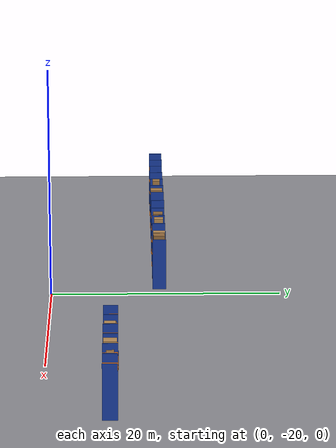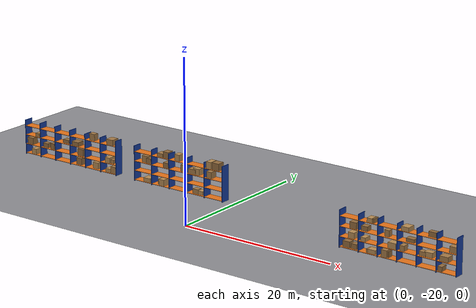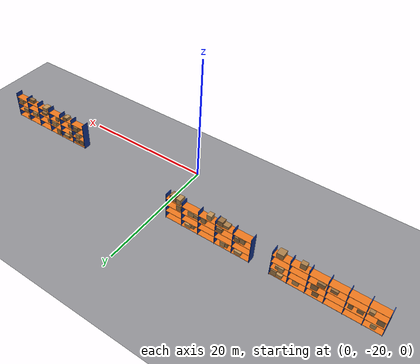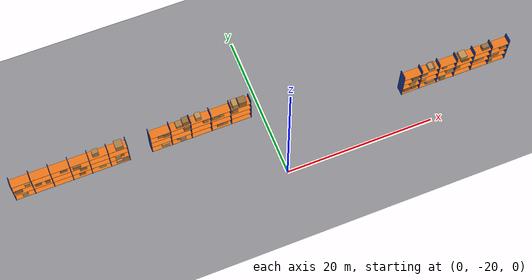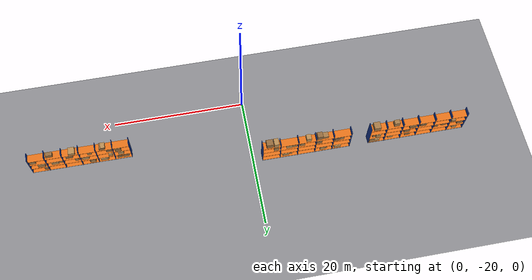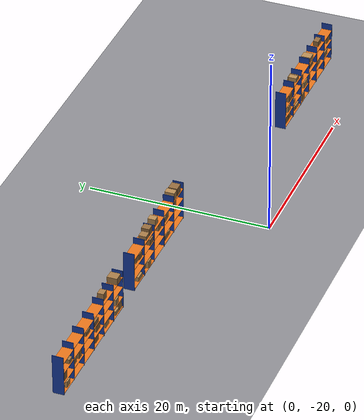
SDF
<sdf version="1.9">
 <world name="warehouse">
  <model name="ground_plane">
   <static>true</static>
   <link name="link">
    <collision name="collision">
     <geometry><plane><normal>0 0 1</normal><size>1 1</size></plane></geometry>
    </collision>
    <visual name="visual">
     <geometry><plane><normal>0 0 1</normal><size>200 100</size></plane></geometry>
     <material>
      <ambient>0.55 0.55 0.57 1</ambient>
      <diffuse>0.55 0.55 0.57 1</diffuse>
      <specular>0.1 0.1 0.1 1</specular>
     </material>
    </visual>
   </link>
  </model>
  <model name="rack3">
   <static>true</static>
   <link name="link">
    <collision name="up0_c">
     <pose>18.000 -14.700 2.250 0 0 0</pose>
     <geometry><box><size>0.080 1.200 4.500</size></box></geometry>
    </collision>
    <visual name="up0_v">
     <pose>18.000 -14.700 2.250 0 0 0</pose>
     <geometry><box><size>0.080 1.200 4.500</size></box></geometry>
     <material>
      <ambient>0.1 0.25 0.65 1</ambient>
      <diffuse>0.1 0.25 0.65 1</diffuse>
      <specular>0.1 0.1 0.1 1</specular>
     </material>
    </visual>
    <collision name="up1_c">
     <pose>20.500 -14.700 2.250 0 0 0</pose>
     <geometry><box><size>0.080 1.200 4.500</size></box></geometry>
    </collision>
    <visual name="up1_v">
     <pose>20.500 -14.700 2.250 0 0 0</pose>
     <geometry><box><size>0.080 1.200 4.500</size></box></geometry>
     <material>
      <ambient>0.1 0.25 0.65 1</ambient>
      <diffuse>0.1 0.25 0.65 1</diffuse>
      <specular>0.1 0.1 0.1 1</specular>
     </material>
    </visual>
    <collision name="up2_c">
     <pose>23.000 -14.700 2.250 0 0 0</pose>
     <geometry><box><size>0.080 1.200 4.500</size></box></geometry>
    </collision>
    <visual name="up2_v">
     <pose>23.000 -14.700 2.250 0 0 0</pose>
     <geometry><box><size>0.080 1.200 4.500</size></box></geometry>
     <material>
      <ambient>0.1 0.25 0.65 1</ambient>
      <diffuse>0.1 0.25 0.65 1</diffuse>
      <specular>0.1 0.1 0.1 1</specular>
     </material>
    </visual>
    <collision name="up3_c">
     <pose>25.500 -14.700 2.250 0 0 0</pose>
     <geometry><box><size>0.080 1.200 4.500</size></box></geometry>
    </collision>
    <visual name="up3_v">
     <pose>25.500 -14.700 2.250 0 0 0</pose>
     <geometry><box><size>0.080 1.200 4.500</size></box></geometry>
     <material>
      <ambient>0.1 0.25 0.65 1</ambient>
      <diffuse>0.1 0.25 0.65 1</diffuse>
      <specular>0.1 0.1 0.1 1</specular>
     </material>
    </visual>
    <collision name="up4_c">
     <pose>28.000 -14.700 2.250 0 0 0</pose>
     <geometry><box><size>0.080 1.200 4.500</size></box></geometry>
    </collision>
    <visual name="up4_v">
     <pose>28.000 -14.700 2.250 0 0 0</pose>
     <geometry><box><size>0.080 1.200 4.500</size></box></geometry>
     <material>
      <ambient>0.1 0.25 0.65 1</ambient>
      <diffuse>0.1 0.25 0.65 1</diffuse>
      <specular>0.1 0.1 0.1 1</specular>
     </material>
    </visual>
    <collision name="up5_c">
     <pose>30.500 -14.700 2.250 0 0 0</pose>
     <geometry><box><size>0.080 1.200 4.500</size></box></geometry>
    </collision>
    <visual name="up5_v">
     <pose>30.500 -14.700 2.250 0 0 0</pose>
     <geometry><box><size>0.080 1.200 4.500</size></box></geometry>
     <material>
      <ambient>0.1 0.25 0.65 1</ambient>
      <diffuse>0.1 0.25 0.65 1</diffuse>
      <specular>0.1 0.1 0.1 1</specular>
     </material>
    </visual>
    <collision name="up6_c">
     <pose>33.000 -14.700 2.250 0 0 0</pose>
     <geometry><box><size>0.080 1.200 4.500</size></box></geometry>
    </collision>
    <visual name="up6_v">
     <pose>33.000 -14.700 2.250 0 0 0</pose>
     <geometry><box><size>0.080 1.200 4.500</size></box></geometry>
     <material>
      <ambient>0.1 0.25 0.65 1</ambient>
      <diffuse>0.1 0.25 0.65 1</diffuse>
      <specular>0.1 0.1 0.1 1</specular>
     </material>
    </visual>
    <collision name="sh0_c">
     <pose>25.500 -14.700 0.150 0 0 0</pose>
     <geometry><box><size>15.000 1.200 0.050</size></box></geometry>
    </collision>
    <visual name="sh0_v">
     <pose>25.500 -14.700 0.150 0 0 0</pose>
     <geometry><box><size>15.000 1.200 0.050</size></box></geometry>
     <material>
      <ambient>0.9 0.45 0.1 1</ambient>
      <diffuse>0.9 0.45 0.1 1</diffuse>
      <specular>0.1 0.1 0.1 1</specular>
     </material>
    </visual>
    <collision name="sh1_c">
     <pose>25.500 -14.700 1.350 0 0 0</pose>
     <geometry><box><size>15.000 1.200 0.050</size></box></geometry>
    </collision>
    <visual name="sh1_v">
     <pose>25.500 -14.700 1.350 0 0 0</pose>
     <geometry><box><size>15.000 1.200 0.050</size></box></geometry>
     <material>
      <ambient>0.9 0.45 0.1 1</ambient>
      <diffuse>0.9 0.45 0.1 1</diffuse>
      <specular>0.1 0.1 0.1 1</specular>
     </material>
    </visual>
    <collision name="sh2_c">
     <pose>25.500 -14.700 2.550 0 0 0</pose>
     <geometry><box><size>15.000 1.200 0.050</size></box></geometry>
    </collision>
    <visual name="sh2_v">
     <pose>25.500 -14.700 2.550 0 0 0</pose>
     <geometry><box><size>15.000 1.200 0.050</size></box></geometry>
     <material>
      <ambient>0.9 0.45 0.1 1</ambient>
      <diffuse>0.9 0.45 0.1 1</diffuse>
      <specular>0.1 0.1 0.1 1</specular>
     </material>
    </visual>
    <collision name="sh3_c">
     <pose>25.500 -14.700 3.750 0 0 0</pose>
     <geometry><box><size>15.000 1.200 0.050</size></box></geometry>
    </collision>
    <visual name="sh3_v">
     <pose>25.500 -14.700 3.750 0 0 0</pose>
     <geometry><box><size>15.000 1.200 0.050</size></box></geometry>
     <material>
      <ambient>0.9 0.45 0.1 1</ambient>
      <diffuse>0.9 0.45 0.1 1</diffuse>
      <specular>0.1 0.1 0.1 1</specular>
     </material>
    </visual>
    <collision name="c0_c">
     <pose>18.833 -14.697 0.542 0 0 0</pose>
     <geometry><box><size>0.922 0.825 0.734</size></box></geometry>
    </collision>
    <visual name="c0_v">
     <pose>18.833 -14.697 0.542 0 0 0</pose>
     <geometry><box><size>0.922 0.825 0.734</size></box></geometry>
     <material>
      <ambient>0.58 0.42 0.24 1</ambient>
      <diffuse>0.58 0.42 0.24 1</diffuse>
      <specular>0.1 0.1 0.1 1</specular>
     </material>
    </visual>
    <collision name="c1_c">
     <pose>19.816 -14.692 0.476 0 0 0</pose>
     <geometry><box><size>0.733 0.813 0.603</size></box></geometry>
    </collision>
    <visual name="c1_v">
     <pose>19.816 -14.692 0.476 0 0 0</pose>
     <geometry><box><size>0.733 0.813 0.603</size></box></geometry>
     <material>
      <ambient>0.58 0.42 0.24 1</ambient>
      <diffuse>0.58 0.42 0.24 1</diffuse>
      <specular>0.1 0.1 0.1 1</specular>
     </material>
    </visual>
    <collision name="c2_c">
     <pose>19.474 -14.687 1.735 0 0 0</pose>
     <geometry><box><size>0.796 0.973 0.720</size></box></geometry>
    </collision>
    <visual name="c2_v">
     <pose>19.474 -14.687 1.735 0 0 0</pose>
     <geometry><box><size>0.796 0.973 0.720</size></box></geometry>
     <material>
      <ambient>0.72 0.55 0.33 1</ambient>
      <diffuse>0.72 0.55 0.33 1</diffuse>
      <specular>0.1 0.1 0.1 1</specular>
     </material>
    </visual>
    <collision name="c3_c">
     <pose>19.742 -14.673 2.971 0 0 0</pose>
     <geometry><box><size>0.880 1.069 0.791</size></box></geometry>
    </collision>
    <visual name="c3_v">
     <pose>19.742 -14.673 2.971 0 0 0</pose>
     <geometry><box><size>0.880 1.069 0.791</size></box></geometry>
     <material>
      <ambient>0.58 0.42 0.24 1</ambient>
      <diffuse>0.58 0.42 0.24 1</diffuse>
      <specular>0.1 0.1 0.1 1</specular>
     </material>
    </visual>
    <collision name="c4_c">
     <pose>22.175 -14.702 0.413 0 0 0</pose>
     <geometry><box><size>1.024 0.872 0.476</size></box></geometry>
    </collision>
    <visual name="c4_v">
     <pose>22.175 -14.702 0.413 0 0 0</pose>
     <geometry><box><size>1.024 0.872 0.476</size></box></geometry>
     <material>
      <ambient>0.72 0.55 0.33 1</ambient>
      <diffuse>0.72 0.55 0.33 1</diffuse>
      <specular>0.1 0.1 0.1 1</specular>
     </material>
    </visual>
    <collision name="c5_c">
     <pose>21.885 -14.743 0.400 0 0 0</pose>
     <geometry><box><size>0.806 0.735 0.449</size></box></geometry>
    </collision>
    <visual name="c5_v">
     <pose>21.885 -14.743 0.400 0 0 0</pose>
     <geometry><box><size>0.806 0.735 0.449</size></box></geometry>
     <material>
      <ambient>0.65 0.48 0.28 1</ambient>
      <diffuse>0.65 0.48 0.28 1</diffuse>
      <specular>0.1 0.1 0.1 1</specular>
     </material>
    </visual>
    <collision name="c6_c">
     <pose>21.058 -14.686 1.615 0 0 0</pose>
     <geometry><box><size>0.598 0.955 0.481</size></box></geometry>
    </collision>
    <visual name="c6_v">
     <pose>21.058 -14.686 1.615 0 0 0</pose>
     <geometry><box><size>0.598 0.955 0.481</size></box></geometry>
     <material>
      <ambient>0.72 0.55 0.33 1</ambient>
      <diffuse>0.72 0.55 0.33 1</diffuse>
      <specular>0.1 0.1 0.1 1</specular>
     </material>
    </visual>
    <collision name="c7_c">
     <pose>21.110 -14.680 2.858 0 0 0</pose>
     <geometry><box><size>0.817 0.719 0.567</size></box></geometry>
    </collision>
    <visual name="c7_v">
     <pose>21.110 -14.680 2.858 0 0 0</pose>
     <geometry><box><size>0.817 0.719 0.567</size></box></geometry>
     <material>
      <ambient>0.58 0.42 0.24 1</ambient>
      <diffuse>0.58 0.42 0.24 1</diffuse>
      <specular>0.1 0.1 0.1 1</specular>
     </material>
    </visual>
    <collision name="c8_c">
     <pose>21.979 -14.679 4.017 0 0 0</pose>
     <geometry><box><size>0.807 0.968 0.484</size></box></geometry>
    </collision>
    <visual name="c8_v">
     <pose>21.979 -14.679 4.017 0 0 0</pose>
     <geometry><box><size>0.807 0.968 0.484</size></box></geometry>
     <material>
      <ambient>0.58 0.42 0.24 1</ambient>
      <diffuse>0.58 0.42 0.24 1</diffuse>
      <specular>0.1 0.1 0.1 1</specular>
     </material>
    </visual>
    <collision name="c9_c">
     <pose>21.850 -14.733 4.033 0 0 0</pose>
     <geometry><box><size>0.662 0.905 0.516</size></box></geometry>
    </collision>
    <visual name="c9_v">
     <pose>21.850 -14.733 4.033 0 0 0</pose>
     <geometry><box><size>0.662 0.905 0.516</size></box></geometry>
     <material>
      <ambient>0.72 0.55 0.33 1</ambient>
      <diffuse>0.72 0.55 0.33 1</diffuse>
      <specular>0.1 0.1 0.1 1</specular>
     </material>
    </visual>
    <collision name="c10_c">
     <pose>23.899 -14.684 0.527 0 0 0</pose>
     <geometry><box><size>0.930 0.729 0.705</size></box></geometry>
    </collision>
    <visual name="c10_v">
     <pose>23.899 -14.684 0.527 0 0 0</pose>
     <geometry><box><size>0.930 0.729 0.705</size></box></geometry>
     <material>
      <ambient>0.58 0.42 0.24 1</ambient>
      <diffuse>0.58 0.42 0.24 1</diffuse>
      <specular>0.1 0.1 0.1 1</specular>
     </material>
    </visual>
    <collision name="c11_c">
     <pose>23.858 -14.723 0.608 0 0 0</pose>
     <geometry><box><size>0.742 1.064 0.867</size></box></geometry>
    </collision>
    <visual name="c11_v">
     <pose>23.858 -14.723 0.608 0 0 0</pose>
     <geometry><box><size>0.742 1.064 0.867</size></box></geometry>
     <material>
      <ambient>0.65 0.48 0.28 1</ambient>
      <diffuse>0.65 0.48 0.28 1</diffuse>
      <specular>0.1 0.1 0.1 1</specular>
     </material>
    </visual>
    <collision name="c12_c">
     <pose>24.803 -14.735 1.720 0 0 0</pose>
     <geometry><box><size>1.023 0.890 0.691</size></box></geometry>
    </collision>
    <visual name="c12_v">
     <pose>24.803 -14.735 1.720 0 0 0</pose>
     <geometry><box><size>1.023 0.890 0.691</size></box></geometry>
     <material>
      <ambient>0.72 0.55 0.33 1</ambient>
      <diffuse>0.72 0.55 0.33 1</diffuse>
      <specular>0.1 0.1 0.1 1</specular>
     </material>
    </visual>
    <collision name="c13_c">
     <pose>24.012 -14.675 2.954 0 0 0</pose>
     <geometry><box><size>0.583 0.669 0.758</size></box></geometry>
    </collision>
    <visual name="c13_v">
     <pose>24.012 -14.675 2.954 0 0 0</pose>
     <geometry><box><size>0.583 0.669 0.758</size></box></geometry>
     <material>
      <ambient>0.65 0.48 0.28 1</ambient>
      <diffuse>0.65 0.48 0.28 1</diffuse>
      <specular>0.1 0.1 0.1 1</specular>
     </material>
    </visual>
    <collision name="c14_c">
     <pose>26.055 -14.731 1.698 0 0 0</pose>
     <geometry><box><size>0.564 0.799 0.646</size></box></geometry>
    </collision>
    <visual name="c14_v">
     <pose>26.055 -14.731 1.698 0 0 0</pose>
     <geometry><box><size>0.564 0.799 0.646</size></box></geometry>
     <material>
      <ambient>0.65 0.48 0.28 1</ambient>
      <diffuse>0.65 0.48 0.28 1</diffuse>
      <specular>0.1 0.1 0.1 1</specular>
     </material>
    </visual>
    <collision name="c15_c">
     <pose>27.008 -14.669 2.784 0 0 0</pose>
     <geometry><box><size>1.033 0.708 0.417</size></box></geometry>
    </collision>
    <visual name="c15_v">
     <pose>27.008 -14.669 2.784 0 0 0</pose>
     <geometry><box><size>1.033 0.708 0.417</size></box></geometry>
     <material>
      <ambient>0.58 0.42 0.24 1</ambient>
      <diffuse>0.58 0.42 0.24 1</diffuse>
      <specular>0.1 0.1 0.1 1</specular>
     </material>
    </visual>
    <collision name="c16_c">
     <pose>26.577 -14.700 3.999 0 0 0</pose>
     <geometry><box><size>0.571 0.946 0.448</size></box></geometry>
    </collision>
    <visual name="c16_v">
     <pose>26.577 -14.700 3.999 0 0 0</pose>
     <geometry><box><size>0.571 0.946 0.448</size></box></geometry>
     <material>
      <ambient>0.72 0.55 0.33 1</ambient>
      <diffuse>0.72 0.55 0.33 1</diffuse>
      <specular>0.1 0.1 0.1 1</specular>
     </material>
    </visual>
    <collision name="c17_c">
     <pose>26.458 -14.695 4.034 0 0 0</pose>
     <geometry><box><size>0.950 1.087 0.518</size></box></geometry>
    </collision>
    <visual name="c17_v">
     <pose>26.458 -14.695 4.034 0 0 0</pose>
     <geometry><box><size>0.950 1.087 0.518</size></box></geometry>
     <material>
      <ambient>0.72 0.55 0.33 1</ambient>
      <diffuse>0.72 0.55 0.33 1</diffuse>
      <specular>0.1 0.1 0.1 1</specular>
     </material>
    </visual>
    <collision name="c18_c">
     <pose>28.617 -14.748 1.628 0 0 0</pose>
     <geometry><box><size>0.798 0.655 0.507</size></box></geometry>
    </collision>
    <visual name="c18_v">
     <pose>28.617 -14.748 1.628 0 0 0</pose>
     <geometry><box><size>0.798 0.655 0.507</size></box></geometry>
     <material>
      <ambient>0.65 0.48 0.28 1</ambient>
      <diffuse>0.65 0.48 0.28 1</diffuse>
      <specular>0.1 0.1 0.1 1</specular>
     </material>
    </visual>
    <collision name="c19_c">
     <pose>29.353 -14.658 1.671 0 0 0</pose>
     <geometry><box><size>1.015 0.760 0.592</size></box></geometry>
    </collision>
    <visual name="c19_v">
     <pose>29.353 -14.658 1.671 0 0 0</pose>
     <geometry><box><size>1.015 0.760 0.592</size></box></geometry>
     <material>
      <ambient>0.72 0.55 0.33 1</ambient>
      <diffuse>0.72 0.55 0.33 1</diffuse>
      <specular>0.1 0.1 0.1 1</specular>
     </material>
    </visual>
    <collision name="c20_c">
     <pose>29.748 -14.696 4.072 0 0 0</pose>
     <geometry><box><size>0.976 0.615 0.594</size></box></geometry>
    </collision>
    <visual name="c20_v">
     <pose>29.748 -14.696 4.072 0 0 0</pose>
     <geometry><box><size>0.976 0.615 0.594</size></box></geometry>
     <material>
      <ambient>0.58 0.42 0.24 1</ambient>
      <diffuse>0.58 0.42 0.24 1</diffuse>
      <specular>0.1 0.1 0.1 1</specular>
     </material>
    </visual>
    <collision name="c21_c">
     <pose>30.899 -14.696 0.451 0 0 0</pose>
     <geometry><box><size>0.548 0.926 0.552</size></box></geometry>
    </collision>
    <visual name="c21_v">
     <pose>30.899 -14.696 0.451 0 0 0</pose>
     <geometry><box><size>0.548 0.926 0.552</size></box></geometry>
     <material>
      <ambient>0.58 0.42 0.24 1</ambient>
      <diffuse>0.58 0.42 0.24 1</diffuse>
      <specular>0.1 0.1 0.1 1</specular>
     </material>
    </visual>
    <collision name="c22_c">
     <pose>31.366 -14.700 1.683 0 0 0</pose>
     <geometry><box><size>1.060 0.990 0.616</size></box></geometry>
    </collision>
    <visual name="c22_v">
     <pose>31.366 -14.700 1.683 0 0 0</pose>
     <geometry><box><size>1.060 0.990 0.616</size></box></geometry>
     <material>
      <ambient>0.65 0.48 0.28 1</ambient>
      <diffuse>0.65 0.48 0.28 1</diffuse>
      <specular>0.1 0.1 0.1 1</specular>
     </material>
    </visual>
    <collision name="c23_c">
     <pose>32.408 -14.686 2.933 0 0 0</pose>
     <geometry><box><size>0.898 0.795 0.716</size></box></geometry>
    </collision>
    <visual name="c23_v">
     <pose>32.408 -14.686 2.933 0 0 0</pose>
     <geometry><box><size>0.898 0.795 0.716</size></box></geometry>
     <material>
      <ambient>0.65 0.48 0.28 1</ambient>
      <diffuse>0.65 0.48 0.28 1</diffuse>
      <specular>0.1 0.1 0.1 1</specular>
     </material>
    </visual>
   </link>
  </model>
  <model name="rack4">
   <static>true</static>
   <link name="link">
    <collision name="up0_c">
     <pose>-33.000 -10.500 2.250 0 0 0</pose>
     <geometry><box><size>0.080 1.200 4.500</size></box></geometry>
    </collision>
    <visual name="up0_v">
     <pose>-33.000 -10.500 2.250 0 0 0</pose>
     <geometry><box><size>0.080 1.200 4.500</size></box></geometry>
     <material>
      <ambient>0.1 0.25 0.65 1</ambient>
      <diffuse>0.1 0.25 0.65 1</diffuse>
      <specular>0.1 0.1 0.1 1</specular>
     </material>
    </visual>
    <collision name="up1_c">
     <pose>-30.500 -10.500 2.250 0 0 0</pose>
     <geometry><box><size>0.080 1.200 4.500</size></box></geometry>
    </collision>
    <visual name="up1_v">
     <pose>-30.500 -10.500 2.250 0 0 0</pose>
     <geometry><box><size>0.080 1.200 4.500</size></box></geometry>
     <material>
      <ambient>0.1 0.25 0.65 1</ambient>
      <diffuse>0.1 0.25 0.65 1</diffuse>
      <specular>0.1 0.1 0.1 1</specular>
     </material>
    </visual>
    <collision name="up2_c">
     <pose>-28.000 -10.500 2.250 0 0 0</pose>
     <geometry><box><size>0.080 1.200 4.500</size></box></geometry>
    </collision>
    <visual name="up2_v">
     <pose>-28.000 -10.500 2.250 0 0 0</pose>
     <geometry><box><size>0.080 1.200 4.500</size></box></geometry>
     <material>
      <ambient>0.1 0.25 0.65 1</ambient>
      <diffuse>0.1 0.25 0.65 1</diffuse>
      <specular>0.1 0.1 0.1 1</specular>
     </material>
    </visual>
    <collision name="up3_c">
     <pose>-25.500 -10.500 2.250 0 0 0</pose>
     <geometry><box><size>0.080 1.200 4.500</size></box></geometry>
    </collision>
    <visual name="up3_v">
     <pose>-25.500 -10.500 2.250 0 0 0</pose>
     <geometry><box><size>0.080 1.200 4.500</size></box></geometry>
     <material>
      <ambient>0.1 0.25 0.65 1</ambient>
      <diffuse>0.1 0.25 0.65 1</diffuse>
      <specular>0.1 0.1 0.1 1</specular>
     </material>
    </visual>
    <collision name="up4_c">
     <pose>-23.000 -10.500 2.250 0 0 0</pose>
     <geometry><box><size>0.080 1.200 4.500</size></box></geometry>
    </collision>
    <visual name="up4_v">
     <pose>-23.000 -10.500 2.250 0 0 0</pose>
     <geometry><box><size>0.080 1.200 4.500</size></box></geometry>
     <material>
      <ambient>0.1 0.25 0.65 1</ambient>
      <diffuse>0.1 0.25 0.65 1</diffuse>
      <specular>0.1 0.1 0.1 1</specular>
     </material>
    </visual>
    <collision name="up5_c">
     <pose>-20.500 -10.500 2.250 0 0 0</pose>
     <geometry><box><size>0.080 1.200 4.500</size></box></geometry>
    </collision>
    <visual name="up5_v">
     <pose>-20.500 -10.500 2.250 0 0 0</pose>
     <geometry><box><size>0.080 1.200 4.500</size></box></geometry>
     <material>
      <ambient>0.1 0.25 0.65 1</ambient>
      <diffuse>0.1 0.25 0.65 1</diffuse>
      <specular>0.1 0.1 0.1 1</specular>
     </material>
    </visual>
    <collision name="up6_c">
     <pose>-18.000 -10.500 2.250 0 0 0</pose>
     <geometry><box><size>0.080 1.200 4.500</size></box></geometry>
    </collision>
    <visual name="up6_v">
     <pose>-18.000 -10.500 2.250 0 0 0</pose>
     <geometry><box><size>0.080 1.200 4.500</size></box></geometry>
     <material>
      <ambient>0.1 0.25 0.65 1</ambient>
      <diffuse>0.1 0.25 0.65 1</diffuse>
      <specular>0.1 0.1 0.1 1</specular>
     </material>
    </visual>
    <collision name="sh0_c">
     <pose>-25.500 -10.500 0.150 0 0 0</pose>
     <geometry><box><size>15.000 1.200 0.050</size></box></geometry>
    </collision>
    <visual name="sh0_v">
     <pose>-25.500 -10.500 0.150 0 0 0</pose>
     <geometry><box><size>15.000 1.200 0.050</size></box></geometry>
     <material>
      <ambient>0.9 0.45 0.1 1</ambient>
      <diffuse>0.9 0.45 0.1 1</diffuse>
      <specular>0.1 0.1 0.1 1</specular>
     </material>
    </visual>
    <collision name="sh1_c">
     <pose>-25.500 -10.500 1.350 0 0 0</pose>
     <geometry><box><size>15.000 1.200 0.050</size></box></geometry>
    </collision>
    <visual name="sh1_v">
     <pose>-25.500 -10.500 1.350 0 0 0</pose>
     <geometry><box><size>15.000 1.200 0.050</size></box></geometry>
     <material>
      <ambient>0.9 0.45 0.1 1</ambient>
      <diffuse>0.9 0.45 0.1 1</diffuse>
      <specular>0.1 0.1 0.1 1</specular>
     </material>
    </visual>
    <collision name="sh2_c">
     <pose>-25.500 -10.500 2.550 0 0 0</pose>
     <geometry><box><size>15.000 1.200 0.050</size></box></geometry>
    </collision>
    <visual name="sh2_v">
     <pose>-25.500 -10.500 2.550 0 0 0</pose>
     <geometry><box><size>15.000 1.200 0.050</size></box></geometry>
     <material>
      <ambient>0.9 0.45 0.1 1</ambient>
      <diffuse>0.9 0.45 0.1 1</diffuse>
      <specular>0.1 0.1 0.1 1</specular>
     </material>
    </visual>
    <collision name="sh3_c">
     <pose>-25.500 -10.500 3.750 0 0 0</pose>
     <geometry><box><size>15.000 1.200 0.050</size></box></geometry>
    </collision>
    <visual name="sh3_v">
     <pose>-25.500 -10.500 3.750 0 0 0</pose>
     <geometry><box><size>15.000 1.200 0.050</size></box></geometry>
     <material>
      <ambient>0.9 0.45 0.1 1</ambient>
      <diffuse>0.9 0.45 0.1 1</diffuse>
      <specular>0.1 0.1 0.1 1</specular>
     </material>
    </visual>
    <collision name="c0_c">
     <pose>-31.715 -10.544 0.515 0 0 0</pose>
     <geometry><box><size>0.710 0.903 0.680</size></box></geometry>
    </collision>
    <visual name="c0_v">
     <pose>-31.715 -10.544 0.515 0 0 0</pose>
     <geometry><box><size>0.710 0.903 0.680</size></box></geometry>
     <material>
      <ambient>0.72 0.55 0.33 1</ambient>
      <diffuse>0.72 0.55 0.33 1</diffuse>
      <specular>0.1 0.1 0.1 1</specular>
     </material>
    </visual>
    <collision name="c1_c">
     <pose>-32.340 -10.523 1.805 0 0 0</pose>
     <geometry><box><size>0.927 0.868 0.860</size></box></geometry>
    </collision>
    <visual name="c1_v">
     <pose>-32.340 -10.523 1.805 0 0 0</pose>
     <geometry><box><size>0.927 0.868 0.860</size></box></geometry>
     <material>
      <ambient>0.58 0.42 0.24 1</ambient>
      <diffuse>0.58 0.42 0.24 1</diffuse>
      <specular>0.1 0.1 0.1 1</specular>
     </material>
    </visual>
    <collision name="c2_c">
     <pose>-31.060 -10.465 2.813 0 0 0</pose>
     <geometry><box><size>0.651 1.088 0.476</size></box></geometry>
    </collision>
    <visual name="c2_v">
     <pose>-31.060 -10.465 2.813 0 0 0</pose>
     <geometry><box><size>0.651 1.088 0.476</size></box></geometry>
     <material>
      <ambient>0.65 0.48 0.28 1</ambient>
      <diffuse>0.65 0.48 0.28 1</diffuse>
      <specular>0.1 0.1 0.1 1</specular>
     </material>
    </visual>
    <collision name="c3_c">
     <pose>-29.810 -10.547 1.653 0 0 0</pose>
     <geometry><box><size>0.801 0.650 0.556</size></box></geometry>
    </collision>
    <visual name="c3_v">
     <pose>-29.810 -10.547 1.653 0 0 0</pose>
     <geometry><box><size>0.801 0.650 0.556</size></box></geometry>
     <material>
      <ambient>0.58 0.42 0.24 1</ambient>
      <diffuse>0.58 0.42 0.24 1</diffuse>
      <specular>0.1 0.1 0.1 1</specular>
     </material>
    </visual>
    <collision name="c4_c">
     <pose>-28.591 -10.548 1.752 0 0 0</pose>
     <geometry><box><size>0.577 0.798 0.754</size></box></geometry>
    </collision>
    <visual name="c4_v">
     <pose>-28.591 -10.548 1.752 0 0 0</pose>
     <geometry><box><size>0.577 0.798 0.754</size></box></geometry>
     <material>
      <ambient>0.58 0.42 0.24 1</ambient>
      <diffuse>0.58 0.42 0.24 1</diffuse>
      <specular>0.1 0.1 0.1 1</specular>
     </material>
    </visual>
    <collision name="c5_c">
     <pose>-26.349 -10.469 2.808 0 0 0</pose>
     <geometry><box><size>0.940 0.757 0.465</size></box></geometry>
    </collision>
    <visual name="c5_v">
     <pose>-26.349 -10.469 2.808 0 0 0</pose>
     <geometry><box><size>0.940 0.757 0.465</size></box></geometry>
     <material>
      <ambient>0.58 0.42 0.24 1</ambient>
      <diffuse>0.58 0.42 0.24 1</diffuse>
      <specular>0.1 0.1 0.1 1</specular>
     </material>
    </visual>
    <collision name="c6_c">
     <pose>-24.236 -10.511 0.606 0 0 0</pose>
     <geometry><box><size>0.802 0.703 0.862</size></box></geometry>
    </collision>
    <visual name="c6_v">
     <pose>-24.236 -10.511 0.606 0 0 0</pose>
     <geometry><box><size>0.802 0.703 0.862</size></box></geometry>
     <material>
      <ambient>0.58 0.42 0.24 1</ambient>
      <diffuse>0.58 0.42 0.24 1</diffuse>
      <specular>0.1 0.1 0.1 1</specular>
     </material>
    </visual>
    <collision name="c7_c">
     <pose>-23.941 -10.467 1.822 0 0 0</pose>
     <geometry><box><size>0.892 0.824 0.894</size></box></geometry>
    </collision>
    <visual name="c7_v">
     <pose>-23.941 -10.467 1.822 0 0 0</pose>
     <geometry><box><size>0.892 0.824 0.894</size></box></geometry>
     <material>
      <ambient>0.58 0.42 0.24 1</ambient>
      <diffuse>0.58 0.42 0.24 1</diffuse>
      <specular>0.1 0.1 0.1 1</specular>
     </material>
    </visual>
    <collision name="c8_c">
     <pose>-24.683 -10.513 2.848 0 0 0</pose>
     <geometry><box><size>1.038 1.016 0.546</size></box></geometry>
    </collision>
    <visual name="c8_v">
     <pose>-24.683 -10.513 2.848 0 0 0</pose>
     <geometry><box><size>1.038 1.016 0.546</size></box></geometry>
     <material>
      <ambient>0.58 0.42 0.24 1</ambient>
      <diffuse>0.58 0.42 0.24 1</diffuse>
      <specular>0.1 0.1 0.1 1</specular>
     </material>
    </visual>
    <collision name="c9_c">
     <pose>-21.530 -10.519 0.579 0 0 0</pose>
     <geometry><box><size>0.845 0.622 0.807</size></box></geometry>
    </collision>
    <visual name="c9_v">
     <pose>-21.530 -10.519 0.579 0 0 0</pose>
     <geometry><box><size>0.845 0.622 0.807</size></box></geometry>
     <material>
      <ambient>0.72 0.55 0.33 1</ambient>
      <diffuse>0.72 0.55 0.33 1</diffuse>
      <specular>0.1 0.1 0.1 1</specular>
     </material>
    </visual>
    <collision name="c10_c">
     <pose>-22.009 -10.517 4.204 0 0 0</pose>
     <geometry><box><size>0.816 0.674 0.857</size></box></geometry>
    </collision>
    <visual name="c10_v">
     <pose>-22.009 -10.517 4.204 0 0 0</pose>
     <geometry><box><size>0.816 0.674 0.857</size></box></geometry>
     <material>
      <ambient>0.65 0.48 0.28 1</ambient>
      <diffuse>0.65 0.48 0.28 1</diffuse>
      <specular>0.1 0.1 0.1 1</specular>
     </material>
    </visual>
    <collision name="c11_c">
     <pose>-18.540 -10.468 0.607 0 0 0</pose>
     <geometry><box><size>0.788 1.056 0.864</size></box></geometry>
    </collision>
    <visual name="c11_v">
     <pose>-18.540 -10.468 0.607 0 0 0</pose>
     <geometry><box><size>0.788 1.056 0.864</size></box></geometry>
     <material>
      <ambient>0.65 0.48 0.28 1</ambient>
      <diffuse>0.65 0.48 0.28 1</diffuse>
      <specular>0.1 0.1 0.1 1</specular>
     </material>
    </visual>
    <collision name="c12_c">
     <pose>-19.220 -10.492 0.409 0 0 0</pose>
     <geometry><box><size>1.053 1.001 0.467</size></box></geometry>
    </collision>
    <visual name="c12_v">
     <pose>-19.220 -10.492 0.409 0 0 0</pose>
     <geometry><box><size>1.053 1.001 0.467</size></box></geometry>
     <material>
      <ambient>0.72 0.55 0.33 1</ambient>
      <diffuse>0.72 0.55 0.33 1</diffuse>
      <specular>0.1 0.1 0.1 1</specular>
     </material>
    </visual>
    <collision name="c13_c">
     <pose>-19.404 -10.504 1.736 0 0 0</pose>
     <geometry><box><size>0.717 1.071 0.722</size></box></geometry>
    </collision>
    <visual name="c13_v">
     <pose>-19.404 -10.504 1.736 0 0 0</pose>
     <geometry><box><size>0.717 1.071 0.722</size></box></geometry>
     <material>
      <ambient>0.72 0.55 0.33 1</ambient>
      <diffuse>0.72 0.55 0.33 1</diffuse>
      <specular>0.1 0.1 0.1 1</specular>
     </material>
    </visual>
    <collision name="c14_c">
     <pose>-18.973 -10.494 1.612 0 0 0</pose>
     <geometry><box><size>0.819 0.684 0.474</size></box></geometry>
    </collision>
    <visual name="c14_v">
     <pose>-18.973 -10.494 1.612 0 0 0</pose>
     <geometry><box><size>0.819 0.684 0.474</size></box></geometry>
     <material>
      <ambient>0.65 0.48 0.28 1</ambient>
      <diffuse>0.65 0.48 0.28 1</diffuse>
      <specular>0.1 0.1 0.1 1</specular>
     </material>
    </visual>
    <collision name="c15_c">
     <pose>-18.968 -10.530 4.145 0 0 0</pose>
     <geometry><box><size>0.987 1.089 0.741</size></box></geometry>
    </collision>
    <visual name="c15_v">
     <pose>-18.968 -10.530 4.145 0 0 0</pose>
     <geometry><box><size>0.987 1.089 0.741</size></box></geometry>
     <material>
      <ambient>0.65 0.48 0.28 1</ambient>
      <diffuse>0.65 0.48 0.28 1</diffuse>
      <specular>0.1 0.1 0.1 1</specular>
     </material>
    </visual>
   </link>
  </model>
  <model name="rack5">
   <static>true</static>
   <link name="link">
    <collision name="up0_c">
     <pose>-15.000 -10.500 2.250 0 0 0</pose>
     <geometry><box><size>0.080 1.200 4.500</size></box></geometry>
    </collision>
    <visual name="up0_v">
     <pose>-15.000 -10.500 2.250 0 0 0</pose>
     <geometry><box><size>0.080 1.200 4.500</size></box></geometry>
     <material>
      <ambient>0.1 0.25 0.65 1</ambient>
      <diffuse>0.1 0.25 0.65 1</diffuse>
      <specular>0.1 0.1 0.1 1</specular>
     </material>
    </visual>
    <collision name="up1_c">
     <pose>-12.300 -10.500 2.250 0 0 0</pose>
     <geometry><box><size>0.080 1.200 4.500</size></box></geometry>
    </collision>
    <visual name="up1_v">
     <pose>-12.300 -10.500 2.250 0 0 0</pose>
     <geometry><box><size>0.080 1.200 4.500</size></box></geometry>
     <material>
      <ambient>0.1 0.25 0.65 1</ambient>
      <diffuse>0.1 0.25 0.65 1</diffuse>
      <specular>0.1 0.1 0.1 1</specular>
     </material>
    </visual>
    <collision name="up2_c">
     <pose>-9.600 -10.500 2.250 0 0 0</pose>
     <geometry><box><size>0.080 1.200 4.500</size></box></geometry>
    </collision>
    <visual name="up2_v">
     <pose>-9.600 -10.500 2.250 0 0 0</pose>
     <geometry><box><size>0.080 1.200 4.500</size></box></geometry>
     <material>
      <ambient>0.1 0.25 0.65 1</ambient>
      <diffuse>0.1 0.25 0.65 1</diffuse>
      <specular>0.1 0.1 0.1 1</specular>
     </material>
    </visual>
    <collision name="up3_c">
     <pose>-6.900 -10.500 2.250 0 0 0</pose>
     <geometry><box><size>0.080 1.200 4.500</size></box></geometry>
    </collision>
    <visual name="up3_v">
     <pose>-6.900 -10.500 2.250 0 0 0</pose>
     <geometry><box><size>0.080 1.200 4.500</size></box></geometry>
     <material>
      <ambient>0.1 0.25 0.65 1</ambient>
      <diffuse>0.1 0.25 0.65 1</diffuse>
      <specular>0.1 0.1 0.1 1</specular>
     </material>
    </visual>
    <collision name="up4_c">
     <pose>-4.200 -10.500 2.250 0 0 0</pose>
     <geometry><box><size>0.080 1.200 4.500</size></box></geometry>
    </collision>
    <visual name="up4_v">
     <pose>-4.200 -10.500 2.250 0 0 0</pose>
     <geometry><box><size>0.080 1.200 4.500</size></box></geometry>
     <material>
      <ambient>0.1 0.25 0.65 1</ambient>
      <diffuse>0.1 0.25 0.65 1</diffuse>
      <specular>0.1 0.1 0.1 1</specular>
     </material>
    </visual>
    <collision name="up5_c">
     <pose>-1.500 -10.500 2.250 0 0 0</pose>
     <geometry><box><size>0.080 1.200 4.500</size></box></geometry>
    </collision>
    <visual name="up5_v">
     <pose>-1.500 -10.500 2.250 0 0 0</pose>
     <geometry><box><size>0.080 1.200 4.500</size></box></geometry>
     <material>
      <ambient>0.1 0.25 0.65 1</ambient>
      <diffuse>0.1 0.25 0.65 1</diffuse>
      <specular>0.1 0.1 0.1 1</specular>
     </material>
    </visual>
    <collision name="sh0_c">
     <pose>-8.250 -10.500 0.150 0 0 0</pose>
     <geometry><box><size>13.500 1.200 0.050</size></box></geometry>
    </collision>
    <visual name="sh0_v">
     <pose>-8.250 -10.500 0.150 0 0 0</pose>
     <geometry><box><size>13.500 1.200 0.050</size></box></geometry>
     <material>
      <ambient>0.9 0.45 0.1 1</ambient>
      <diffuse>0.9 0.45 0.1 1</diffuse>
      <specular>0.1 0.1 0.1 1</specular>
     </material>
    </visual>
    <collision name="sh1_c">
     <pose>-8.250 -10.500 1.350 0 0 0</pose>
     <geometry><box><size>13.500 1.200 0.050</size></box></geometry>
    </collision>
    <visual name="sh1_v">
     <pose>-8.250 -10.500 1.350 0 0 0</pose>
     <geometry><box><size>13.500 1.200 0.050</size></box></geometry>
     <material>
      <ambient>0.9 0.45 0.1 1</ambient>
      <diffuse>0.9 0.45 0.1 1</diffuse>
      <specular>0.1 0.1 0.1 1</specular>
     </material>
    </visual>
    <collision name="sh2_c">
     <pose>-8.250 -10.500 2.550 0 0 0</pose>
     <geometry><box><size>13.500 1.200 0.050</size></box></geometry>
    </collision>
    <visual name="sh2_v">
     <pose>-8.250 -10.500 2.550 0 0 0</pose>
     <geometry><box><size>13.500 1.200 0.050</size></box></geometry>
     <material>
      <ambient>0.9 0.45 0.1 1</ambient>
      <diffuse>0.9 0.45 0.1 1</diffuse>
      <specular>0.1 0.1 0.1 1</specular>
     </material>
    </visual>
    <collision name="sh3_c">
     <pose>-8.250 -10.500 3.750 0 0 0</pose>
     <geometry><box><size>13.500 1.200 0.050</size></box></geometry>
    </collision>
    <visual name="sh3_v">
     <pose>-8.250 -10.500 3.750 0 0 0</pose>
     <geometry><box><size>13.500 1.200 0.050</size></box></geometry>
     <material>
      <ambient>0.9 0.45 0.1 1</ambient>
      <diffuse>0.9 0.45 0.1 1</diffuse>
      <specular>0.1 0.1 0.1 1</specular>
     </material>
    </visual>
    <collision name="c0_c">
     <pose>-13.147 -10.499 0.429 0 0 0</pose>
     <geometry><box><size>1.013 0.997 0.509</size></box></geometry>
    </collision>
    <visual name="c0_v">
     <pose>-13.147 -10.499 0.429 0 0 0</pose>
     <geometry><box><size>1.013 0.997 0.509</size></box></geometry>
     <material>
      <ambient>0.72 0.55 0.33 1</ambient>
      <diffuse>0.72 0.55 0.33 1</diffuse>
      <specular>0.1 0.1 0.1 1</specular>
     </material>
    </visual>
    <collision name="c1_c">
     <pose>-13.496 -10.463 2.998 0 0 0</pose>
     <geometry><box><size>0.926 0.742 0.846</size></box></geometry>
    </collision>
    <visual name="c1_v">
     <pose>-13.496 -10.463 2.998 0 0 0</pose>
     <geometry><box><size>0.926 0.742 0.846</size></box></geometry>
     <material>
      <ambient>0.65 0.48 0.28 1</ambient>
      <diffuse>0.65 0.48 0.28 1</diffuse>
      <specular>0.1 0.1 0.1 1</specular>
     </material>
    </visual>
    <collision name="c2_c">
     <pose>-12.874 -10.470 2.911 0 0 0</pose>
     <geometry><box><size>0.755 0.938 0.672</size></box></geometry>
    </collision>
    <visual name="c2_v">
     <pose>-12.874 -10.470 2.911 0 0 0</pose>
     <geometry><box><size>0.755 0.938 0.672</size></box></geometry>
     <material>
      <ambient>0.58 0.42 0.24 1</ambient>
      <diffuse>0.58 0.42 0.24 1</diffuse>
      <specular>0.1 0.1 0.1 1</specular>
     </material>
    </visual>
    <collision name="c3_c">
     <pose>-11.159 -10.462 0.508 0 0 0</pose>
     <geometry><box><size>0.744 0.604 0.666</size></box></geometry>
    </collision>
    <visual name="c3_v">
     <pose>-11.159 -10.462 0.508 0 0 0</pose>
     <geometry><box><size>0.744 0.604 0.666</size></box></geometry>
     <material>
      <ambient>0.65 0.48 0.28 1</ambient>
      <diffuse>0.65 0.48 0.28 1</diffuse>
      <specular>0.1 0.1 0.1 1</specular>
     </material>
    </visual>
    <collision name="c4_c">
     <pose>-10.801 -10.546 0.574 0 0 0</pose>
     <geometry><box><size>0.742 1.041 0.798</size></box></geometry>
    </collision>
    <visual name="c4_v">
     <pose>-10.801 -10.546 0.574 0 0 0</pose>
     <geometry><box><size>0.742 1.041 0.798</size></box></geometry>
     <material>
      <ambient>0.72 0.55 0.33 1</ambient>
      <diffuse>0.72 0.55 0.33 1</diffuse>
      <specular>0.1 0.1 0.1 1</specular>
     </material>
    </visual>
    <collision name="c5_c">
     <pose>-10.122 -10.518 2.903 0 0 0</pose>
     <geometry><box><size>0.824 1.011 0.656</size></box></geometry>
    </collision>
    <visual name="c5_v">
     <pose>-10.122 -10.518 2.903 0 0 0</pose>
     <geometry><box><size>0.824 1.011 0.656</size></box></geometry>
     <material>
      <ambient>0.58 0.42 0.24 1</ambient>
      <diffuse>0.58 0.42 0.24 1</diffuse>
      <specular>0.1 0.1 0.1 1</specular>
     </material>
    </visual>
    <collision name="c6_c">
     <pose>-10.186 -10.509 4.180 0 0 0</pose>
     <geometry><box><size>0.815 0.871 0.809</size></box></geometry>
    </collision>
    <visual name="c6_v">
     <pose>-10.186 -10.509 4.180 0 0 0</pose>
     <geometry><box><size>0.815 0.871 0.809</size></box></geometry>
     <material>
      <ambient>0.58 0.42 0.24 1</ambient>
      <diffuse>0.58 0.42 0.24 1</diffuse>
      <specular>0.1 0.1 0.1 1</specular>
     </material>
    </visual>
    <collision name="c7_c">
     <pose>-11.042 -10.536 4.008 0 0 0</pose>
     <geometry><box><size>0.849 0.826 0.465</size></box></geometry>
    </collision>
    <visual name="c7_v">
     <pose>-11.042 -10.536 4.008 0 0 0</pose>
     <geometry><box><size>0.849 0.826 0.465</size></box></geometry>
     <material>
      <ambient>0.65 0.48 0.28 1</ambient>
      <diffuse>0.65 0.48 0.28 1</diffuse>
      <specular>0.1 0.1 0.1 1</specular>
     </material>
    </visual>
    <collision name="c8_c">
     <pose>-7.547 -10.483 3.009 0 0 0</pose>
     <geometry><box><size>0.721 0.801 0.868</size></box></geometry>
    </collision>
    <visual name="c8_v">
     <pose>-7.547 -10.483 3.009 0 0 0</pose>
     <geometry><box><size>0.721 0.801 0.868</size></box></geometry>
     <material>
      <ambient>0.65 0.48 0.28 1</ambient>
      <diffuse>0.65 0.48 0.28 1</diffuse>
      <specular>0.1 0.1 0.1 1</specular>
     </material>
    </visual>
    <collision name="c9_c">
     <pose>-8.475 -10.475 4.174 0 0 0</pose>
     <geometry><box><size>0.730 0.832 0.798</size></box></geometry>
    </collision>
    <visual name="c9_v">
     <pose>-8.475 -10.475 4.174 0 0 0</pose>
     <geometry><box><size>0.730 0.832 0.798</size></box></geometry>
     <material>
      <ambient>0.72 0.55 0.33 1</ambient>
      <diffuse>0.72 0.55 0.33 1</diffuse>
      <specular>0.1 0.1 0.1 1</specular>
     </material>
    </visual>
    <collision name="c10_c">
     <pose>-5.696 -10.548 0.464 0 0 0</pose>
     <geometry><box><size>0.774 0.658 0.577</size></box></geometry>
    </collision>
    <visual name="c10_v">
     <pose>-5.696 -10.548 0.464 0 0 0</pose>
     <geometry><box><size>0.774 0.658 0.577</size></box></geometry>
     <material>
      <ambient>0.65 0.48 0.28 1</ambient>
      <diffuse>0.65 0.48 0.28 1</diffuse>
      <specular>0.1 0.1 0.1 1</specular>
     </material>
    </visual>
    <collision name="c11_c">
     <pose>-5.117 -10.455 0.407 0 0 0</pose>
     <geometry><box><size>0.988 0.784 0.464</size></box></geometry>
    </collision>
    <visual name="c11_v">
     <pose>-5.117 -10.455 0.407 0 0 0</pose>
     <geometry><box><size>0.988 0.784 0.464</size></box></geometry>
     <material>
      <ambient>0.72 0.55 0.33 1</ambient>
      <diffuse>0.72 0.55 0.33 1</diffuse>
      <specular>0.1 0.1 0.1 1</specular>
     </material>
    </visual>
    <collision name="c12_c">
     <pose>-5.573 -10.478 2.969 0 0 0</pose>
     <geometry><box><size>0.915 0.817 0.788</size></box></geometry>
    </collision>
    <visual name="c12_v">
     <pose>-5.573 -10.478 2.969 0 0 0</pose>
     <geometry><box><size>0.915 0.817 0.788</size></box></geometry>
     <material>
      <ambient>0.72 0.55 0.33 1</ambient>
      <diffuse>0.72 0.55 0.33 1</diffuse>
      <specular>0.1 0.1 0.1 1</specular>
     </material>
    </visual>
    <collision name="c13_c">
     <pose>-6.173 -10.529 2.881 0 0 0</pose>
     <geometry><box><size>1.070 0.801 0.613</size></box></geometry>
    </collision>
    <visual name="c13_v">
     <pose>-6.173 -10.529 2.881 0 0 0</pose>
     <geometry><box><size>1.070 0.801 0.613</size></box></geometry>
     <material>
      <ambient>0.65 0.48 0.28 1</ambient>
      <diffuse>0.65 0.48 0.28 1</diffuse>
      <specular>0.1 0.1 0.1 1</specular>
     </material>
    </visual>
    <collision name="c14_c">
     <pose>-3.573 -10.489 2.984 0 0 0</pose>
     <geometry><box><size>0.739 0.962 0.817</size></box></geometry>
    </collision>
    <visual name="c14_v">
     <pose>-3.573 -10.489 2.984 0 0 0</pose>
     <geometry><box><size>0.739 0.962 0.817</size></box></geometry>
     <material>
      <ambient>0.65 0.48 0.28 1</ambient>
      <diffuse>0.65 0.48 0.28 1</diffuse>
      <specular>0.1 0.1 0.1 1</specular>
     </material>
    </visual>
    <collision name="c15_c">
     <pose>-3.561 -10.495 4.217 0 0 0</pose>
     <geometry><box><size>0.708 1.073 0.885</size></box></geometry>
    </collision>
    <visual name="c15_v">
     <pose>-3.561 -10.495 4.217 0 0 0</pose>
     <geometry><box><size>0.708 1.073 0.885</size></box></geometry>
     <material>
      <ambient>0.72 0.55 0.33 1</ambient>
      <diffuse>0.72 0.55 0.33 1</diffuse>
      <specular>0.1 0.1 0.1 1</specular>
     </material>
    </visual>
    <collision name="c16_c">
     <pose>-2.573 -10.532 4.224 0 0 0</pose>
     <geometry><box><size>1.001 0.971 0.898</size></box></geometry>
    </collision>
    <visual name="c16_v">
     <pose>-2.573 -10.532 4.224 0 0 0</pose>
     <geometry><box><size>1.001 0.971 0.898</size></box></geometry>
     <material>
      <ambient>0.58 0.42 0.24 1</ambient>
      <diffuse>0.58 0.42 0.24 1</diffuse>
      <specular>0.1 0.1 0.1 1</specular>
     </material>
    </visual>
   </link>
  </model>
 </world>
</sdf>
